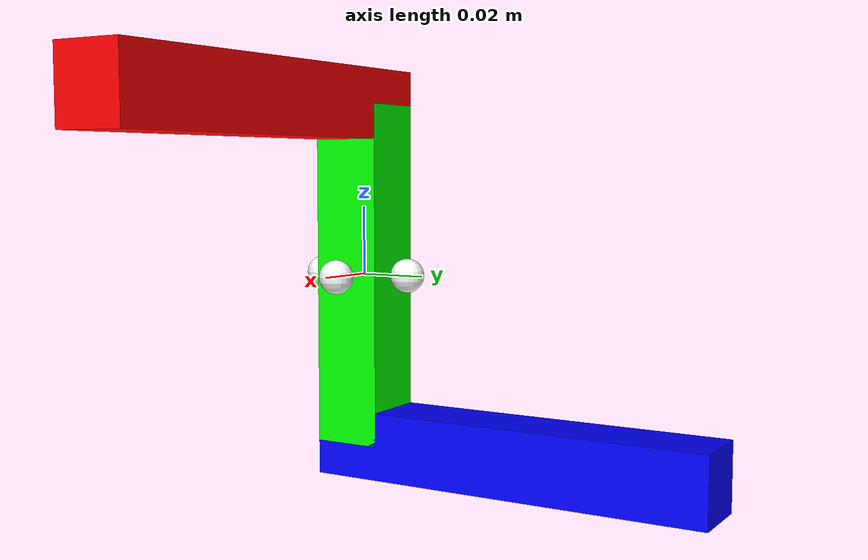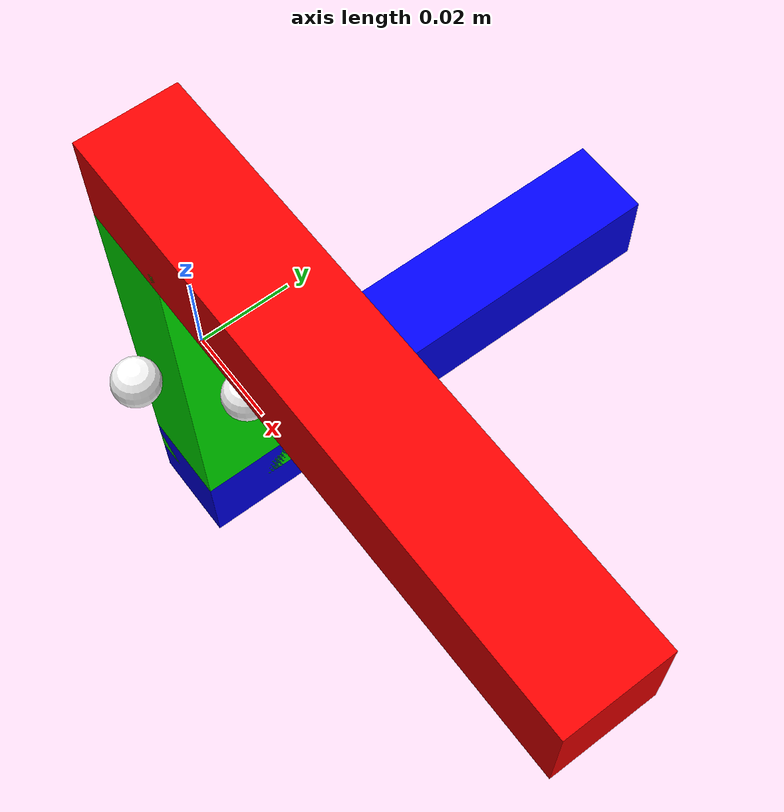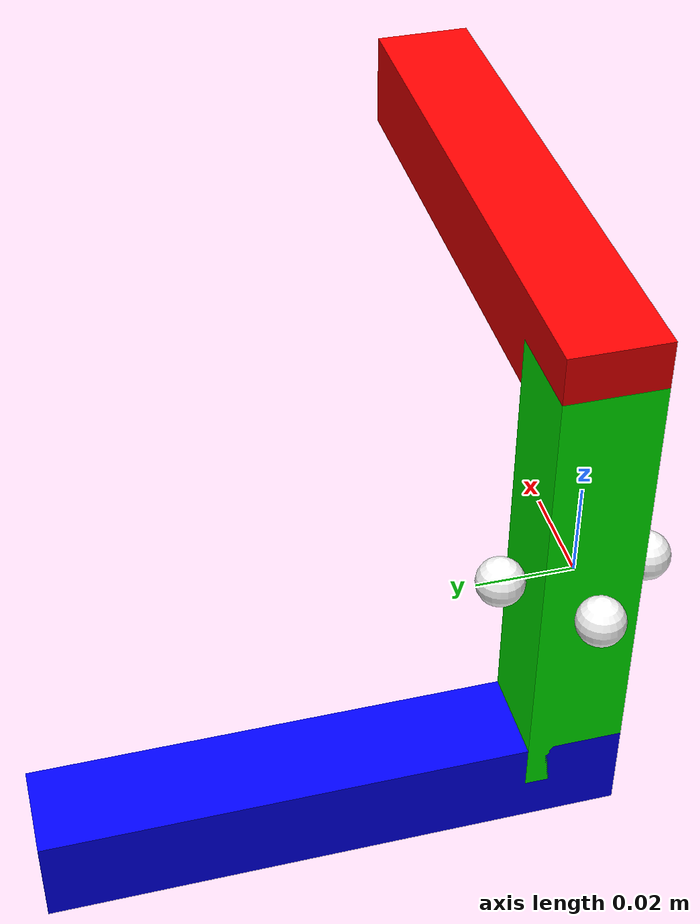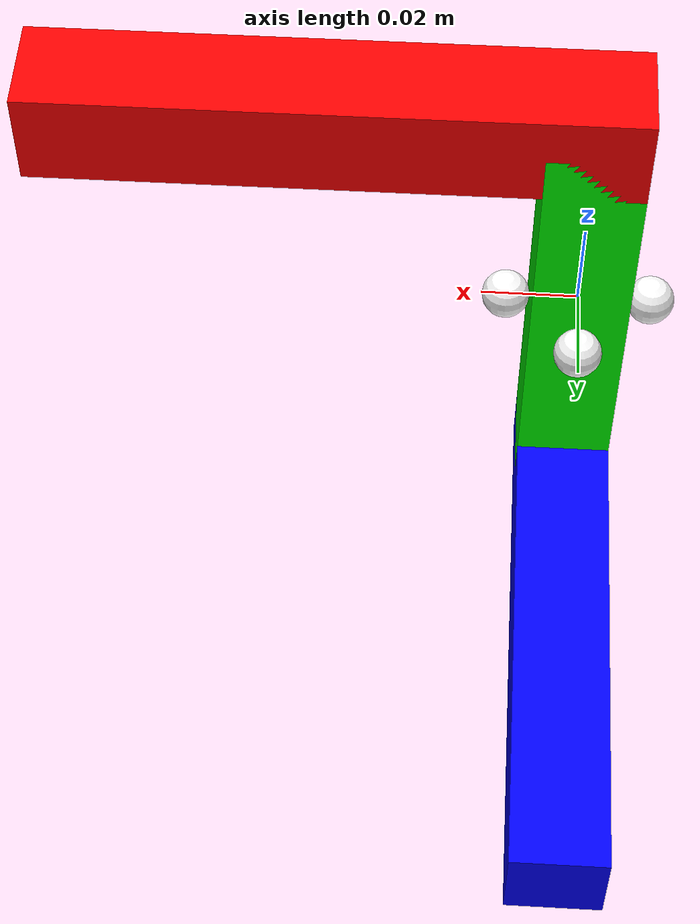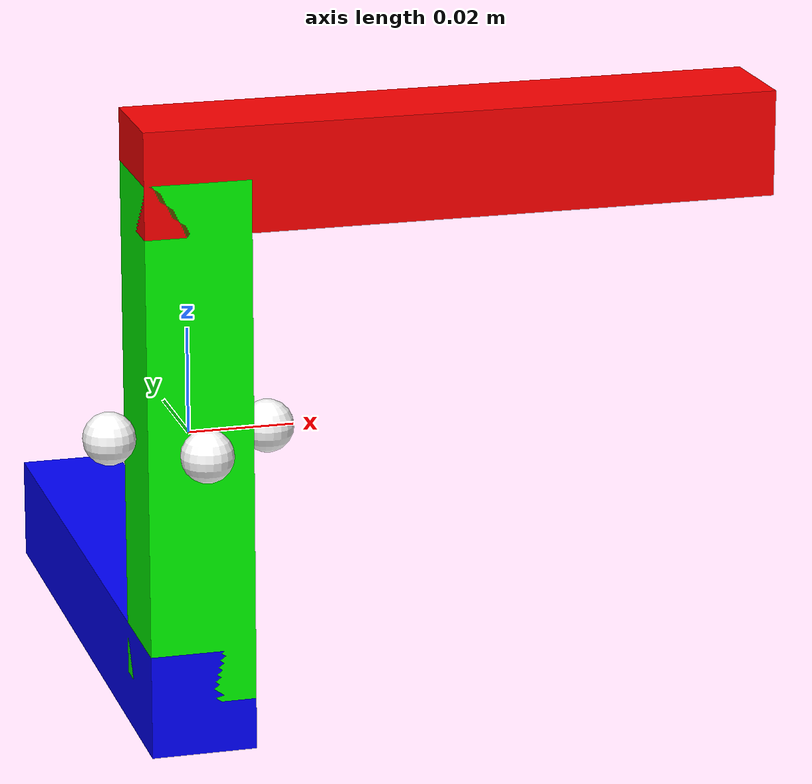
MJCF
<mujoco>
  <worldbody>
    <body>
    <geom name="p1" mass="0.01" type="box" size=".01 .01 .05" rgba="0 1 0 1"/>
    <geom name="p2" mass="0.01" type="box" pos="0.05 0 .05" size=".06 .01 .01" rgba="1 0 0 1"/>
    <geom name="p3" mass="0.01" type="box" pos="0 0.05 -0.05" size=".01 .06 .01" rgba="0 0 1 1"/>
    <site name="s1" pos="0.015 0 0" rgba="1 1 1 1"/>
    <site name="s2" pos="-0.015 0 0" rgba="1 1 1 1"/>
    <site name="s3" pos="0 0.015 0" rgba="1 1 1 1"/>
    <site name="s4" pos="0 -0.015 0" rgba="1 1 1 1"/>
    </body>
  </worldbody>
</mujoco>
